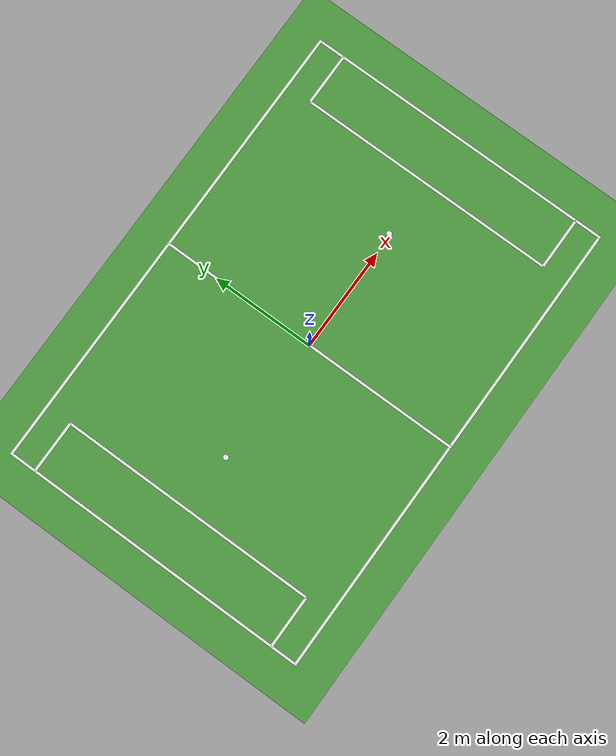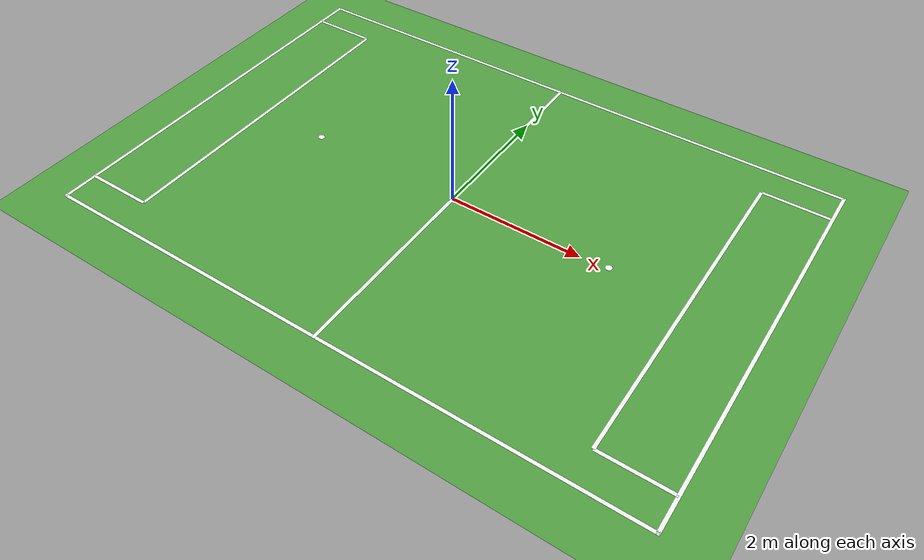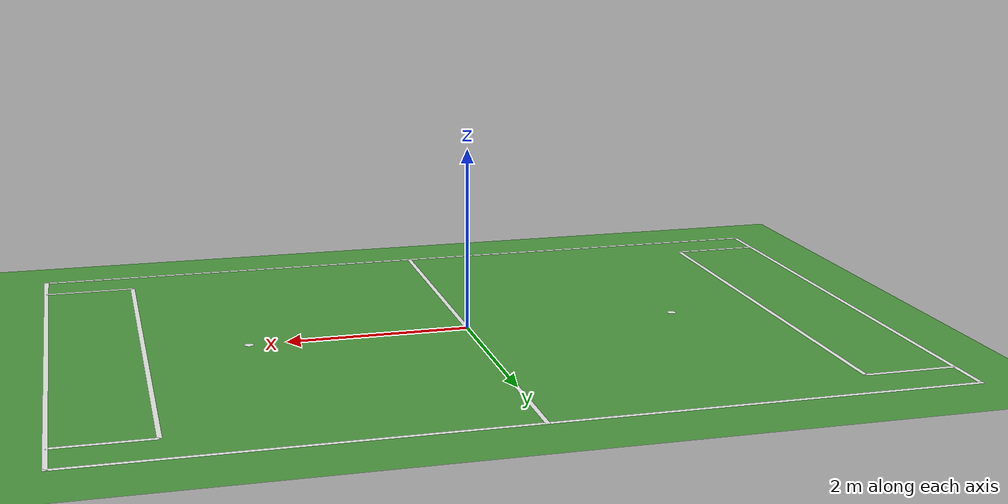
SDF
<sdf version='1.6'>
    <model name='RoboCup Field'>
        <static>false</static>
        <link name='field'>
            <pose frame=''>0 0 0.01 0 -0 0</pose>
            <collision name='collision'>
                <geometry>
                    <plane>
                        <normal>0 0 1</normal>
                        <size>10.4 7.4</size>
                    </plane>
                </geometry>
                <surface>
                    <friction>
                        <ode>
                            <mu>100</mu>
                            <mu2>50</mu2>
                        </ode>
                        <torsional>
                            <ode/>
                        </torsional>
                    </friction>
                    <contact>
                        <ode/>
                    </contact>
                    <bounce/>
                </surface>
                <max_contacts>10</max_contacts>
            </collision>
            <inertial>
                <mass>0.01</mass>
                <inertia>
                    <ixx>0.0000001</ixx>
                    <ixy>0.0000001</ixy>
                    <ixz>0.0000001</ixz>
                    <iyy>0.0000001</iyy>
                    <iyz>0.0000001</iyz>
                    <izz>0.0000001</izz>
                </inertia>
            </inertial>
            <visual name='carpet'>
                <cast_shadows>0</cast_shadows>
                <geometry>
                    <plane>
                        <normal>0 0 1</normal>
                        <size>10.4 7.4</size>
                    </plane>
                </geometry>
                <material>
                    <script>
                        <uri>model://RoboCup Field/materials/scripts/</uri>
                        <uri>model://RoboCup Field/materials/textures/</uri>
                        <name>RoboCup/RealGrass</name>
                    </script>
                </material>
            </visual>
            <visual name='sideline_1'>
                <pose frame=''>0 3 0.001 0 -0 0</pose>
                <cast_shadows>0</cast_shadows>
                <geometry>
                    <plane>
                        <normal>0 0 1</normal>
                        <size>9.05 0.05</size>
                    </plane>
                </geometry>
                <material>
                    <script>
                        <uri>file://media/materials/scripts/gazebo.material</uri>
                        <name>Gazebo/White</name>
                    </script>
                </material>
            </visual>
            <visual name='sideline_2'>
                <pose frame=''>0 -3 0.001 0 -0 0</pose>
                <cast_shadows>0</cast_shadows>
                <geometry>
                    <plane>
                        <normal>0 0 1</normal>
                        <size>9.05 0.05</size>
                    </plane>
                </geometry>
                <material>
                    <script>
                        <uri>file://media/materials/scripts/gazebo.material</uri>
                        <name>Gazebo/White</name>
                    </script>
                </material>
            </visual>
            <visual name='endline_1'>
                <pose frame=''>-4.5 0 0.001 0 -0 0</pose>
                <cast_shadows>0</cast_shadows>
                <geometry>
                    <plane>
                        <normal>0 0 1</normal>
                        <size>0.05 6.05</size>
                    </plane>
                </geometry>
                <material>
                    <script>
                        <uri>file://media/materials/scripts/gazebo.material</uri>
                        <name>Gazebo/White</name>
                    </script>
                </material>
            </visual>
            <visual name='endline_2'>
                <pose frame=''>4.5 0 0.001 0 -0 0</pose>
                <cast_shadows>0</cast_shadows>
                <geometry>
                    <plane>
                        <normal>0 0 1</normal>
                        <size>0.05 6.05</size>
                    </plane>
                </geometry>
                <material>
                    <script>
                        <uri>file://media/materials/scripts/gazebo.material</uri>
                        <name>Gazebo/White</name>
                    </script>
                </material>
            </visual>
            <visual name='halfway_line'>
                <pose frame=''>0 0 0.001 0 -0 0</pose>
                <cast_shadows>0</cast_shadows>
                <geometry>
                    <plane>
                        <normal>0 0 1</normal>
                        <size>0.05 6.05</size>
                    </plane>
                </geometry>
                <material>
                    <script>
                        <uri>file://media/materials/scripts/gazebo.material</uri>
                        <name>Gazebo/White</name>
                    </script>
                </material>
            </visual>
            <visual name='area_1_line_a'>
                <pose frame=''>-3.5 0 0.001 0 -0 0</pose>
                <cast_shadows>0</cast_shadows>
                <geometry>
                    <plane>
                        <normal>0 0 1</normal>
                        <size>0.05 5</size>
                    </plane>
                </geometry>
                <material>
                    <script>
                        <uri>file://media/materials/scripts/gazebo.material</uri>
                        <name>Gazebo/White</name>
                    </script>
                </material>
            </visual>
            <visual name='area_2_line_a'>
                <pose frame=''>-4.0 2.5 0.001 0 -0 0</pose>
                <cast_shadows>0</cast_shadows>
                <geometry>
                    <plane>
                        <normal>0 0 1</normal>
                        <size>1 0.05</size>
                    </plane>
                </geometry>
                <material>
                    <script>
                        <uri>file://media/materials/scripts/gazebo.material</uri>
                        <name>Gazebo/White</name>
                    </script>
                </material>
            </visual>
            <visual name='area_3_line_a'>
                <pose frame=''>-4.0 -2.5 0.001 0 -0 0</pose>
                <cast_shadows>0</cast_shadows>
                <geometry>
                    <plane>
                        <normal>0 0 1</normal>
                        <size>1 0.05</size>
                    </plane>
                </geometry>
                <material>
                    <script>
                        <uri>file://media/materials/scripts/gazebo.material</uri>
                        <name>Gazebo/White</name>
                    </script>
                </material>
            </visual>
            <visual name='area_1_line_b'>
                <pose frame=''>3.5 0 0.001 0 -0 0</pose>
                <cast_shadows>0</cast_shadows>
                <geometry>
                    <plane>
                        <normal>0 0 1</normal>
                        <size>0.05 5</size>
                    </plane>
                </geometry>
                <material>
                    <script>
                        <uri>file://media/materials/scripts/gazebo.material</uri>
                        <name>Gazebo/White</name>
                    </script>
                </material>
            </visual>
            <visual name='area_2_line_b'>
                <pose frame=''>4.0 2.5 0.001 0 -0 0</pose>
                <cast_shadows>0</cast_shadows>
                <geometry>
                    <plane>
                        <normal>0 0 1</normal>
                        <size>1 0.05</size>
                    </plane>
                </geometry>
                <material>
                    <script>
                        <uri>file://media/materials/scripts/gazebo.material</uri>
                        <name>Gazebo/White</name>
                    </script>
                </material>
            </visual>
            <visual name='area_3_line_b'>
                <pose frame=''>4.0 -2.5 0.001 0 -0 0</pose>
                <cast_shadows>0</cast_shadows>
                <geometry>
                    <plane>
                        <normal>0 0 1</normal>
                        <size>1 0.05</size>
                    </plane>
                </geometry>
                <material>
                    <script>
                        <uri>file://media/materials/scripts/gazebo.material</uri>
                        <name>Gazebo/White</name>
                    </script>
                </material>
            </visual>
            <visual name='penalty_a'>
                <pose frame=''>-2.4 0 0.001 0 -0 0</pose>
                <cast_shadows>0</cast_shadows>
                <geometry>
                    <cylinder>
                        <radius>0.05</radius>
                        <length>0.0005</length>
                    </cylinder>
                </geometry>
                <material>
                    <script>
                        <uri>file://media/materials/scripts/gazebo.material</uri>
                        <name>Gazebo/White</name>
                    </script>
                </material>
            </visual>
            <visual name='penalty_b'>
                <pose frame=''>2.4 0 0.001 0 -0 0</pose>
                <cast_shadows>0</cast_shadows>
                <geometry>
                    <cylinder>
                        <radius>0.05</radius>
                        <length>0.0005</length>
                    </cylinder>
                </geometry>
                <material>
                    <script>
                        <uri>file://media/materials/scripts/gazebo.material</uri>
                        <name>Gazebo/White</name>
                    </script>
                </material>
            </visual>
            <self_collide>0</self_collide>
            <kinematic>1</kinematic>
        </link>
        <pose frame=''>0.008111 0.030698 0 0 -0 0</pose>
    </model>
</sdf>
